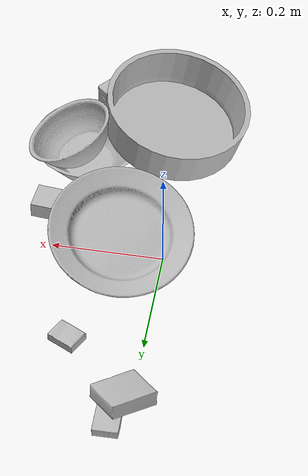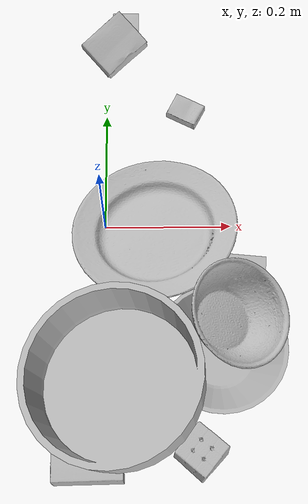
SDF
<sdf version="1.4">
  <world name="default">
    <light name="light1" type="point">
      <pose>0 0 1 0 0 0</pose>
      <diffuse>3 3 3 1</diffuse>
      <specular>3 3 3 1</specular>
    </light>
    <light name="light2" type="point">
      <pose>0 0.5 2 0 0 0</pose>
      <diffuse>1 1 1 1</diffuse>
      <specular>1 1 1 1</specular>
    </light>
    <light name="light3" type="point">
      <pose>0 0.5 2 0 0 0</pose>
      <diffuse>3 3 3 1</diffuse>
      <specular>3 3 3 1</specular>
    </light>
    <scene>
      <ambient>0.7 0.7 0.7</ambient>
    </scene>
    <model name="box1">
      <link name="link_box1">
        <collision name="default">
          <geometry>
            <mesh>
              <uri>model://pudding_box/collision_meshes/collision.obj</uri>
              <scale>0.5 0.5 0.5</scale>
            </mesh>
          </geometry>
          <surface>
            <friction>
              <ode>
                <mu>0.5</mu>
                <mu2>0.5</mu2>
              </ode>
            </friction>
          <contact>
        <ode>
            <max_vel>0</max_vel>
            <min_depth>0.0001</min_depth>
            <kp>1e8</kp>
        </ode>
    </contact></surface>
        </collision>
        <visual name="default">
          <geometry>
            <mesh>
              <uri>model://pudding_box/visual_meshes/visual.dae</uri>
              <scale>0.5 0.5 0.5</scale>
            </mesh>
          </geometry>
        </visual>
        <inertial>
          <mass>0.06043573096394539</mass>
          <pose>0.0002447410661261529 0.00040339428232982755 -0.0002594413817860186 0.005213102238104987 -0.006603800125102895 0.020079827017580043</pose>
          <inertia>
            <ixx>1.707987e-05</ixx>
            <iyy>1.1491458e-05</iyy>
            <izz>2.522289e-05</izz>
            <ixy>0</ixy>
            <ixz>0</ixz>
            <iyz>0</iyz>
          </inertia>
        </inertial>
      </link>
      <pose>0.03160847723484039 0.3686864674091339 0.01027518417686224 -0.016539893259991133 0.007920712598462063 -3.13514309105026</pose>
    </model>
    <model name="box11">
      <link name="link_box11">
        <collision name="default">
          <geometry>
            <mesh>
              <uri>model://wood_block/collision_meshes/collision.obj</uri>
              <scale>0.5 0.5 0.5</scale>
            </mesh>
          </geometry>
          <surface>
            <friction>
              <ode>
                <mu>0.5</mu>
                <mu2>0.5</mu2>
              </ode>
            </friction>
          <contact>
        <ode>
            <max_vel>0</max_vel>
            <min_depth>0.0001</min_depth>
            <kp>1e8</kp>
        </ode>
    </contact></surface>
        </collision>
        <visual name="default">
          <geometry>
            <mesh>
              <uri>model://wood_block/visual_meshes/visual.dae</uri>
              <scale>0.5 0.5 0.5</scale>
            </mesh>
          </geometry>
        </visual>
        <inertial>
          <mass>0.22556793689727783</mass>
          <pose>-2.9066577553749084e-06 -0.000285404734313488 0.00013204290007706732 -0.05220975528916272 -0.005192696013017626 -0.0068613779154948285</pose>
          <inertia>
            <ixx>7.5461e-05</ixx>
            <iyy>0.00023838133</iyy>
            <izz>0.00023748967</izz>
            <ixy>0</ixy>
            <ixz>0</ixz>
            <iyz>0</iyz>
          </inertia>
        </inertial>
      </link>
      <pose>-0.020907804369926453 -0.37908023595809937 0.022681666538119316 7.867432257582472e-05 0.008733044622341925 -3.120036748019681</pose>
    </model>
    <model name="box2">
      <link name="link_box2">
        <collision name="default">
          <geometry>
            <mesh>
              <uri>model://jenga/collision_meshes/collision.obj</uri>
              <scale>1.0 1.0 1.0</scale>
            </mesh>
          </geometry>
          <surface>
            <friction>
              <ode>
                <mu>0.5</mu>
                <mu2>0.5</mu2>
              </ode>
            </friction>
          <contact>
        <ode>
            <max_vel>0</max_vel>
            <min_depth>0.0001</min_depth>
            <kp>1e8</kp>
        </ode>
    </contact></surface>
        </collision>
        <visual name="default">
          <geometry>
            <mesh>
              <uri>model://jenga/visual_meshes/visual.dae</uri>
              <scale>1.0 1.0 1.0</scale>
            </mesh>
          </geometry>
        </visual>
        <inertial>
          <mass>0.2534179985523224</mass>
          <pose>-2.502856091268768e-07 -0.00010250010382151231 -4.0923401684267446e-05 0.0 -7.342154049184251e-07 0.0</pose>
          <inertia>
            <ixx>7.012692e-05</ixx>
            <iyy>0.00047517804</iyy>
            <izz>0.000507293</izz>
            <ixy>0</ixy>
            <ixz>0</ixz>
            <iyz>0</iyz>
          </inertia>
        </inertial>
      </link>
      <pose>0.17387789487838745 -0.08021102845668793 0.015000011771917343 3.576975744304037e-06 1.3301208402083254e-06 3.0396285848933813</pose>
    </model>
    <model name="box21">
      <link name="link_box21">
        <collision name="default">
          <geometry>
            <mesh>
              <uri>model://cracker_box/collision_meshes/collision.obj</uri>
              <scale>0.25 0.25 0.25</scale>
            </mesh>
          </geometry>
          <surface>
            <friction>
              <ode>
                <mu>0.5</mu>
                <mu2>0.5</mu2>
              </ode>
            </friction>
          <contact>
        <ode>
            <max_vel>0</max_vel>
            <min_depth>0.0001</min_depth>
            <kp>1e8</kp>
        </ode>
    </contact></surface>
        </collision>
        <visual name="default">
          <geometry>
            <mesh>
              <uri>model://cracker_box/visual_meshes/visual.dae</uri>
              <scale>0.25 0.25 0.25</scale>
            </mesh>
          </geometry>
        </visual>
        <inertial>
          <mass>0.04045860841870308</mass>
          <pose>0.0002366030093980953 6.358561950037256e-05 -0.0004257383698131889 -0.0003162076898946344 -0.011106488668808423 0.0025467959335197018</pose>
          <inertia>
            <ixx>6.4317906e-06</ixx>
            <iyy>1.062015e-05</iyy>
            <izz>1.5155927e-05</izz>
            <ixy>0</ixy>
            <ixz>0</ixz>
            <iyz>0</iyz>
          </inertia>
        </inertial>
      </link>
      <pose>0.13161250948905945 0.2057466208934784 0.009120451286435127 -0.011787932573852699 -0.007367213733835452 2.6585713078368864</pose>
    </model>
    <model name="box3">
      <link name="link_box3">
        <collision name="default">
          <geometry>
            <mesh>
              <uri>model://rubiks_cube/collision_meshes/collision.obj</uri>
              <scale>1.0 1.0 1.0</scale>
            </mesh>
          </geometry>
          <surface>
            <friction>
              <ode>
                <mu>0.5</mu>
                <mu2>0.5</mu2>
              </ode>
            </friction>
          <contact>
        <ode>
            <max_vel>0</max_vel>
            <min_depth>0.0001</min_depth>
            <kp>1e8</kp>
        </ode>
    </contact></surface>
        </collision>
        <visual name="default">
          <geometry>
            <mesh>
              <uri>model://rubiks_cube/visual_meshes/visual.dae</uri>
              <scale>1.0 1.0 1.0</scale>
            </mesh>
          </geometry>
        </visual>
        <inertial>
          <mass>0.12779320776462555</mass>
          <pose>2.6721041649580002e-05 5.2569666877388954e-05 -7.264316082000732e-06 -0.054672129212199855 -0.09814057073985563 -0.03445704008669109</pose>
          <inertia>
            <ixx>7.061434e-05</ixx>
            <iyy>7.0285016e-05</iyy>
            <izz>7.119949e-05</izz>
            <ixy>0</ixy>
            <ixz>0</ixz>
            <iyz>0</iyz>
          </inertia>
        </inertial>
      </link>
      <pose>0.1423240453004837 -0.35959288477897644 0.02867894433438778 -5.510513464175313e-06 -1.732569200480953e-06 -2.2770462030569716</pose>
    </model>
    <model name="box31">
      <link name="link_box31">
        <collision name="default">
          <geometry>
            <mesh>
              <uri>model://gelatin_box/collision_meshes/collision.obj</uri>
              <scale>1.0 1.0 1.0</scale>
            </mesh>
          </geometry>
          <surface>
            <friction>
              <ode>
                <mu>0.5</mu>
                <mu2>0.5</mu2>
              </ode>
            </friction>
          <contact>
        <ode>
            <max_vel>0</max_vel>
            <min_depth>0.0001</min_depth>
            <kp>1e8</kp>
        </ode>
    </contact></surface>
        </collision>
        <visual name="default">
          <geometry>
            <mesh>
              <uri>model://gelatin_box/visual_meshes/visual.dae</uri>
              <scale>1.0 1.0 1.0</scale>
            </mesh>
          </geometry>
        </visual>
        <inertial>
          <mass>0.20050984621047974</mass>
          <pose>0.0004319618456065655 0.00011156872642459348 -0.00036403213744051754 -0.0010503720853528096 -0.004755817758068365 0.016440559471334753</pose>
          <inertia>
            <ixx>0.00014154361</ixx>
            <iyy>0.00010110386</iyy>
            <izz>0.0002154609</izz>
            <ixy>0</ixy>
            <ixz>0</ixz>
            <iyz>0</iyz>
          </inertia>
        </inertial>
      </link>
      <pose>0.01233674306422472 0.3239065110683441 0.029295699670910835 0.19695240450495513 0.22827047533701683 -0.8254693655291022</pose>
    </model>
    <model name="plate1">
      <link name="link_plate1">
        <collision name="default">
          <geometry>
            <mesh>
              <uri>model://pan_tefal/collision_meshes/collision.obj</uri>
              <scale>1.0 1.0 1.0</scale>
            </mesh>
          </geometry>
          <surface>
            <friction>
              <ode>
                <mu>0.5</mu>
                <mu2>0.5</mu2>
              </ode>
            </friction>
          <contact>
        <ode>
            <max_vel>0</max_vel>
            <min_depth>0.0001</min_depth>
            <kp>1e8</kp>
        </ode>
    </contact></surface>
        </collision>
        <visual name="default">
          <geometry>
            <mesh>
              <uri>model://pan_tefal/visual_meshes/visual.dae</uri>
              <scale>1.0 1.0 1.0</scale>
            </mesh>
          </geometry>
        </visual>
        <inertial>
          <mass>0.9166961908340454</mass>
          <pose>-0.00018002631259150803 3.279098018538207e-05 -0.00851493515074253 0.0008190256602529888 -0.0003301357182707761 -0.33185348708971</pose>
          <inertia>
            <ixx>0.006327908</ixx>
            <iyy>0.006368705</iyy>
            <izz>0.01164846</izz>
            <ixy>0</ixy>
            <ixz>0</ixz>
            <iyz>0</iyz>
          </inertia>
        </inertial>
      </link>
      <pose>0.020408056676387787 -0.26615023612976074 0.09136070311069489 -0.16710339599618676 0.07316354970762183 1.772361903851025</pose>
    </model>
    <model name="bowl1">
      <link name="link_bowl1">
        <collision name="default">
          <geometry>
            <mesh>
              <uri>model://bowl_a/collision_meshes/collision.obj</uri>
              <scale>1.0 1.0 1.0</scale>
            </mesh>
          </geometry>
          <surface>
            <friction>
              <ode>
                <mu>0.5</mu>
                <mu2>0.5</mu2>
              </ode>
            </friction>
          <contact>
        <ode>
            <max_vel>0</max_vel>
            <min_depth>0.0001</min_depth>
            <kp>1e8</kp>
        </ode>
    </contact></surface>
        </collision>
        <visual name="default">
          <geometry>
            <mesh>
              <uri>model://bowl_a/visual_meshes/visual.dae</uri>
              <scale>1.0 1.0 1.0</scale>
            </mesh>
          </geometry>
        </visual>
        <inertial>
          <mass>0.44606471061706543</mass>
          <pose>0.0002786746481433511 4.7312179958680645e-05 -0.0013765294570475817 -0.0009805488171165768 -0.0010938123304380014 -0.19122487556540352</pose>
          <inertia>
            <ixx>0.0012699668</ixx>
            <iyy>0.001277764</iyy>
            <izz>0.0022586845</izz>
            <ixy>0</ixy>
            <ixz>0</ixz>
            <iyz>0</iyz>
          </inertia>
        </inertial>
      </link>
      <pose>0.17435474693775177 -0.21284841001033783 0.03038928657770157 0.00010603974796412222 5.550682834919057e-05 -2.190532237370213</pose>
    </model>
    <model name="plate2">
      <link name="link_plate2">
        <collision name="default">
          <geometry>
            <mesh>
              <uri>model://plate/collision_meshes/collision.obj</uri>
              <scale>1.0 1.0 1.0</scale>
            </mesh>
          </geometry>
          <surface>
            <friction>
              <ode>
                <mu>0.5</mu>
                <mu2>0.5</mu2>
              </ode>
            </friction>
          <contact>
        <ode>
            <max_vel>0</max_vel>
            <min_depth>0.0001</min_depth>
            <kp>1e8</kp>
        </ode>
    </contact></surface>
        </collision>
        <visual name="default">
          <geometry>
            <mesh>
              <uri>model://plate/visual_meshes/visual.dae</uri>
              <scale>1.0 1.0 1.0</scale>
            </mesh>
          </geometry>
        </visual>
        <inertial>
          <mass>0.10088177025318146</mass>
          <pose>-0.0006044645560905337 0.0002782582596410066 -0.0010561994276940823 0.002218810424575964 -0.003225458488037908 0.4526011088858205</pose>
          <inertia>
            <ixx>0.00047192685</ixx>
            <iyy>0.00046741302</iyy>
            <izz>0.00092301855</izz>
            <ixy>0</ixy>
            <ixz>0</ixz>
            <iyz>0</iyz>
          </inertia>
        </inertial>
      </link>
      <pose>0.07835487276315689 -0.018389083445072174 0.03325123339891434 0.24280680101164503 -0.047422950397606786 -2.4434265933949053</pose>
    </model>
    <model name="bowl2">
      <link name="link_bowl2">
        <collision name="default">
          <geometry>
            <mesh>
              <uri>model://bowl/collision_meshes/collision.obj</uri>
              <scale>1.0 1.0 1.0</scale>
            </mesh>
          </geometry>
          <surface>
            <friction>
              <ode>
                <mu>0.5</mu>
                <mu2>0.5</mu2>
              </ode>
            </friction>
          <contact>
        <ode>
            <max_vel>0</max_vel>
            <min_depth>0.0001</min_depth>
            <kp>1e8</kp>
        </ode>
    </contact></surface>
        </collision>
        <visual name="default">
          <geometry>
            <mesh>
              <uri>model://bowl/visual_meshes/visual.dae</uri>
              <scale>1.0 1.0 1.0</scale>
            </mesh>
          </geometry>
        </visual>
        <inertial>
          <mass>0.10570208728313446</mass>
          <pose>0.00020445376867428422 -0.00103021040558815 -0.000804263399913907 -0.015764090239829616 0.014546785988443214 0.7140402180265782</pose>
          <inertia>
            <ixx>0.00024280604</ixx>
            <iyy>0.0002373808</iyy>
            <izz>0.0004084832</izz>
            <ixy>0</ixy>
            <ixz>0</ixz>
            <iyz>0</iyz>
          </inertia>
        </inertial>
      </link>
      <pose>0.18991698324680328 -0.17583554983139038 0.09212150424718857 0.3347208887427707 -0.32743526639086606 2.2438862185374098</pose>
    </model>
  <physics type="ode">
      <max_contacts>50</max_contacts>
      <ode>
        <solver>
          <type>quick</type>
          <iters>75</iters>
        </solver>
        <constraints>
          <contact_max_correcting_vel>0</contact_max_correcting_vel>
          <contact_surface_layer>0</contact_surface_layer>
        </constraints>
      </ode>
    </physics></world>
</sdf>
